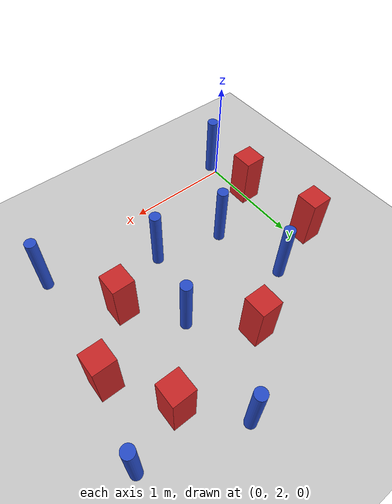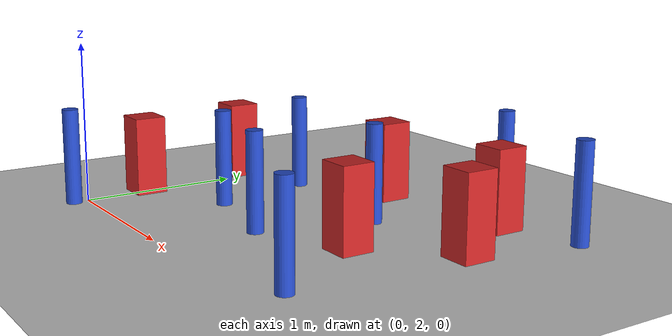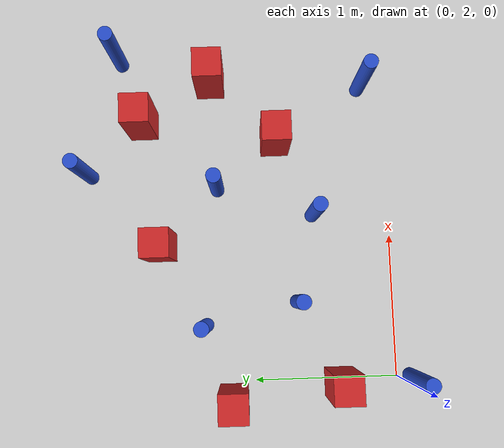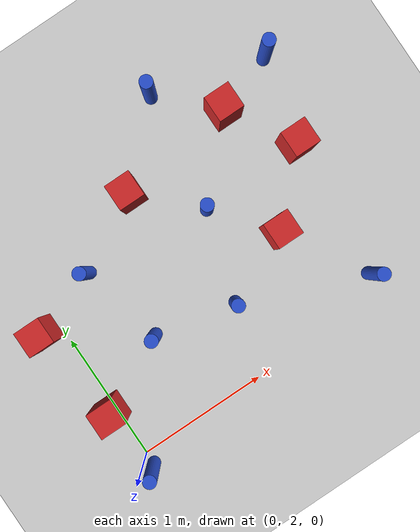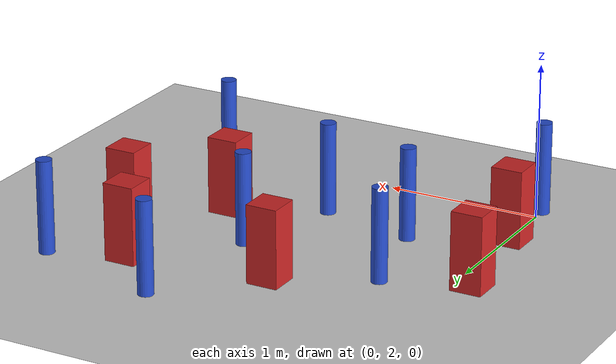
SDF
<sdf version="1.6">
 <world name="default">
  <model name="ground_plane">
   <static>1</static>
   <link name="link">
    <collision name="collision">
     <geometry><plane><normal>0 0 1</normal><size>100 100</size></plane></geometry>
     <surface><friction><ode><mu>100</mu><mu2>50</mu2></ode></friction></surface>
    </collision>
    <visual name="visual">
     <cast_shadows>0</cast_shadows>
     <geometry><plane><normal>0 0 1</normal><size>100 100</size></plane></geometry>
     <material>
      <ambient>1.0 1.0 1.0 1.0</ambient>
      <diffuse>0.8 0.8 0.8 1.0</diffuse>
      <specular>0.01 0.01 0.01 1.000000</specular>
     </material>
    </visual>
   </link>
  </model>
  <model name="pole_obstacle3">
   <static>true</static>
   <pose>0.546766999606 2.6899849425 7.38925637345e-09 -8.471706928e-08 1.2497676512e-08 -1.74513093015e-07</pose>
   <link name="link">
    <pose>0 0 0.3 0 -0 0</pose>
    <inertial>
     <mass>1</mass>
     <inertia><ixx>0.145833</ixx><ixy>0</ixy><ixz>0</ixz><iyy>0.145833</iyy><iyz>0</iyz><izz>0.125</izz></inertia>
    </inertial>
    <collision name="collision">
     <geometry><cylinder><radius>0.05</radius><length>.6</length></cylinder></geometry>
    </collision>
    <visual name="visual">
     <geometry><cylinder><radius>0.05</radius><length>.6</length></cylinder></geometry>
     <material>
      <script><name>Gazebo/Blue</name><uri>file://media/materials/scripts/gazebo.material</uri></script>
     </material>
    </visual>
   </link>
  </model>
  <model name="square_post_obstacle47">
   <static>true</static>
   <pose>-0.119099648137 3.15597819469 1.91545236811e-07 -7.35059704564e-06 1.12565212e-07 2.39332434364e-05</pose>
   <link name="link">
    <pose>0 0 0.25 0 -0 0</pose>
    <inertial>
     <mass>100</mass>
     <inertia>
      <ixx>0.166667</ixx>
      <ixy>0</ixy>
      <ixz>0</ixz>
      <iyy>0.166667</iyy>
      <iyz>0</iyz>
      <izz>0.166667</izz>
     </inertia>
    </inertial>
    <collision name="collision"><geometry><box><size>.2 .2 .5</size></box></geometry></collision>
    <visual name="visual">
     <geometry><box><size>.2 .2 .5</size></box></geometry>
     <material>
      <script><name>Gazebo/Red</name><uri>file://media/materials/scripts/gazebo.material</uri></script>
     </material>
    </visual>
   </link>
  </model>
  <model name="pole_obstacle58">
   <static>true</static>
   <pose>0.397705272501 3.34039945876 7.38925637345e-09 -8.471706928e-08 1.24976765084e-08 -1.74513093017e-07</pose>
   <link name="link">
    <pose>0 0 0.3 0 -0 0</pose>
    <inertial>
     <mass>1</mass>
     <inertia><ixx>0.145833</ixx><ixy>0</ixy><ixz>0</ixz><iyy>0.145833</iyy><iyz>0</iyz><izz>0.125</izz></inertia>
    </inertial>
    <collision name="collision">
     <geometry><cylinder><radius>0.05</radius><length>.6</length></cylinder></geometry>
    </collision>
    <visual name="visual">
     <geometry><cylinder><radius>0.05</radius><length>.6</length></cylinder></geometry>
     <material>
      <script><name>Gazebo/Blue</name><uri>file://media/materials/scripts/gazebo.material</uri></script>
     </material>
    </visual>
   </link>
  </model>
  <model name="pole_obstacle64">
   <static>true</static>
   <pose>1.37551216052 3.24116758559 7.38925637345e-09 -8.47170692799e-08 1.24976765053e-08 -1.74513093017e-07</pose>
   <link name="link">
    <pose>0 0 0.3 0 -0 0</pose>
    <inertial>
     <mass>1</mass>
     <inertia><ixx>0.145833</ixx><ixy>0</ixy><ixz>0</ixz><iyy>0.145833</iyy><iyz>0</iyz><izz>0.125</izz></inertia>
    </inertial>
    <collision name="collision">
     <geometry><cylinder><radius>0.05</radius><length>.6</length></cylinder></geometry>
    </collision>
    <visual name="visual">
     <geometry><cylinder><radius>0.05</radius><length>.6</length></cylinder></geometry>
     <material>
      <script><name>Gazebo/Blue</name><uri>file://media/materials/scripts/gazebo.material</uri></script>
     </material>
    </visual>
   </link>
  </model>
  <model name="pole_obstacle68">
   <static>true</static>
   <pose>2.34547046771 3.93124050635 7.38925637345e-09 -8.47170692798e-08 1.24976764939e-08 -1.74513093025e-07</pose>
   <link name="link">
    <pose>0 0 0.3 0 -0 0</pose>
    <inertial>
     <mass>1</mass>
     <inertia><ixx>0.145833</ixx><ixy>0</ixy><ixz>0</ixz><iyy>0.145833</iyy><iyz>0</iyz><izz>0.125</izz></inertia>
    </inertial>
    <collision name="collision">
     <geometry><cylinder><radius>0.05</radius><length>.6</length></cylinder></geometry>
    </collision>
    <visual name="visual">
     <geometry><cylinder><radius>0.05</radius><length>.6</length></cylinder></geometry>
     <material>
      <script><name>Gazebo/Blue</name><uri>file://media/materials/scripts/gazebo.material</uri></script>
     </material>
    </visual>
   </link>
  </model>
  <model name="square_post_obstacle103">
   <static>true</static>
   <pose>0.962811556818 3.64686974535 1.91545236811e-07 -7.35059704564e-06 1.12565212e-07 2.39332434364e-05</pose>
   <link name="link">
    <pose>0 0 0.25 0 -0 0</pose>
    <inertial>
     <mass>100</mass>
     <inertia>
      <ixx>0.166667</ixx>
      <ixy>0</ixy>
      <ixz>0</ixz>
      <iyy>0.166667</iyy>
      <iyz>0</iyz>
      <izz>0.166667</izz>
     </inertia>
    </inertial>
    <collision name="collision"><geometry><box><size>.2 .2 .5</size></box></geometry></collision>
    <visual name="visual">
     <geometry><box><size>.2 .2 .5</size></box></geometry>
     <material>
      <script><name>Gazebo/Red</name><uri>file://media/materials/scripts/gazebo.material</uri></script>
     </material>
    </visual>
   </link>
  </model>
  <model name="pole_obstacle147">
   <static>true</static>
   <pose>0.00451915030473 1.90810750088 7.38925637345e-09 -8.47170692799e-08 1.24976764949e-08 -1.74513093023e-07</pose>
   <link name="link">
    <pose>0 0 0.3 0 -0 0</pose>
    <inertial>
     <mass>1</mass>
     <inertia><ixx>0.145833</ixx><ixy>0</ixy><ixz>0</ixz><iyy>0.145833</iyy><iyz>0</iyz><izz>0.125</izz></inertia>
    </inertial>
    <collision name="collision">
     <geometry><cylinder><radius>0.05</radius><length>.6</length></cylinder></geometry>
    </collision>
    <visual name="visual">
     <geometry><cylinder><radius>0.05</radius><length>.6</length></cylinder></geometry>
     <material>
      <script><name>Gazebo/Blue</name><uri>file://media/materials/scripts/gazebo.material</uri></script>
     </material>
    </visual>
   </link>
  </model>
  <model name="square_post_obstacle153">
   <static>true</static>
   <pose>2.17187419314 3.27377666658 1.91545236811e-07 -7.35059704564e-06 1.12565212e-07 2.39332434364e-05</pose>
   <link name="link">
    <pose>0 0 0.25 0 -0 0</pose>
    <inertial>
     <mass>100</mass>
     <inertia>
      <ixx>0.166667</ixx>
      <ixy>0</ixy>
      <ixz>0</ixz>
      <iyy>0.166667</iyy>
      <iyz>0</iyz>
      <izz>0.166667</izz>
     </inertia>
    </inertial>
    <collision name="collision"><geometry><box><size>.2 .2 .5</size></box></geometry></collision>
    <visual name="visual">
     <geometry><box><size>.2 .2 .5</size></box></geometry>
     <material>
      <script><name>Gazebo/Red</name><uri>file://media/materials/scripts/gazebo.material</uri></script>
     </material>
    </visual>
   </link>
  </model>
  <model name="square_post_obstacle161">
   <static>true</static>
   <pose>-0.0234518218023 2.41390805467 1.91545236811e-07 -7.35059704564e-06 1.12565212e-07 2.39332434364e-05</pose>
   <link name="link">
    <pose>0 0 0.25 0 -0 0</pose>
    <inertial>
     <mass>100</mass>
     <inertia>
      <ixx>0.166667</ixx>
      <ixy>0</ixy>
      <ixz>0</ixz>
      <iyy>0.166667</iyy>
      <iyz>0</iyz>
      <izz>0.166667</izz>
     </inertia>
    </inertial>
    <collision name="collision"><geometry><box><size>.2 .2 .5</size></box></geometry></collision>
    <visual name="visual">
     <geometry><box><size>.2 .2 .5</size></box></geometry>
     <material>
      <script><name>Gazebo/Red</name><uri>file://media/materials/scripts/gazebo.material</uri></script>
     </material>
    </visual>
   </link>
  </model>
  <model name="square_post_obstacle163">
   <static>true</static>
   <pose>1.72017613019 2.81650073957 1.91545236811e-07 -7.35059704564e-06 1.12565212e-07 2.39332434364e-05</pose>
   <link name="link">
    <pose>0 0 0.25 0 -0 0</pose>
    <inertial>
     <mass>100</mass>
     <inertia>
      <ixx>0.166667</ixx>
      <ixy>0</ixy>
      <ixz>0</ixz>
      <iyy>0.166667</iyy>
      <iyz>0</iyz>
      <izz>0.166667</izz>
     </inertia>
    </inertial>
    <collision name="collision"><geometry><box><size>.2 .2 .5</size></box></geometry></collision>
    <visual name="visual">
     <geometry><box><size>.2 .2 .5</size></box></geometry>
     <material>
      <script><name>Gazebo/Red</name><uri>file://media/materials/scripts/gazebo.material</uri></script>
     </material>
    </visual>
   </link>
  </model>
  <model name="pole_obstacle178">
   <static>true</static>
   <pose>1.16806310443 2.55786432028 7.38925637345e-09 -8.47170692799e-08 1.24976765053e-08 -1.74513093017e-07</pose>
   <link name="link">
    <pose>0 0 0.3 0 -0 0</pose>
    <inertial>
     <mass>1</mass>
     <inertia><ixx>0.145833</ixx><ixy>0</ixy><ixz>0</ixz><iyy>0.145833</iyy><iyz>0</iyz><izz>0.125</izz></inertia>
    </inertial>
    <collision name="collision">
     <geometry><cylinder><radius>0.05</radius><length>.6</length></cylinder></geometry>
    </collision>
    <visual name="visual">
     <geometry><cylinder><radius>0.05</radius><length>.6</length></cylinder></geometry>
     <material>
      <script><name>Gazebo/Blue</name><uri>file://media/materials/scripts/gazebo.material</uri></script>
     </material>
    </visual>
   </link>
  </model>
  <model name="pole_obstacle181">
   <static>true</static>
   <pose>1.49840865579 4.16058623089 7.38925637345e-09 -8.47170692799e-08 1.24976765033e-08 -1.74513093018e-07</pose>
   <link name="link">
    <pose>0 0 0.3 0 -0 0</pose>
    <inertial>
     <mass>1</mass>
     <inertia><ixx>0.145833</ixx><ixy>0</ixy><ixz>0</ixz><iyy>0.145833</iyy><iyz>0</iyz><izz>0.125</izz></inertia>
    </inertial>
    <collision name="collision">
     <geometry><cylinder><radius>0.05</radius><length>.6</length></cylinder></geometry>
    </collision>
    <visual name="visual">
     <geometry><cylinder><radius>0.05</radius><length>.6</length></cylinder></geometry>
     <material>
      <script><name>Gazebo/Blue</name><uri>file://media/materials/scripts/gazebo.material</uri></script>
     </material>
    </visual>
   </link>
  </model>
  <model name="square_post_obstacle176">
   <static>true</static>
   <pose>1.87148981001 3.76761066779 1.91545236811e-07 -7.35059704564e-06 1.12565212e-07 2.39332434364e-05</pose>
   <link name="link">
    <pose>0 0 0.25 0 -0 0</pose>
    <inertial>
     <mass>100</mass>
     <inertia>
      <ixx>0.166667</ixx>
      <ixy>0</ixy>
      <ixz>0</ixz>
      <iyy>0.166667</iyy>
      <iyz>0</iyz>
      <izz>0.166667</izz>
     </inertia>
    </inertial>
    <collision name="collision"><geometry><box><size>.2 .2 .5</size></box></geometry></collision>
    <visual name="visual">
     <geometry><box><size>.2 .2 .5</size></box></geometry>
     <material>
      <script><name>Gazebo/Red</name><uri>file://media/materials/scripts/gazebo.material</uri></script>
     </material>
    </visual>
   </link>
  </model>
  <model name="pole_obstacle229">
   <static>true</static>
   <pose>2.10185000957 2.18513002078 7.38925637345e-09 -8.471706928e-08 1.24976765098e-08 -1.74513093016e-07</pose>
   <link name="link">
    <pose>0 0 0.3 0 -0 0</pose>
    <inertial>
     <mass>1</mass>
     <inertia><ixx>0.145833</ixx><ixy>0</ixy><ixz>0</ixz><iyy>0.145833</iyy><iyz>0</iyz><izz>0.125</izz></inertia>
    </inertial>
    <collision name="collision">
     <geometry><cylinder><radius>0.05</radius><length>.6</length></cylinder></geometry>
    </collision>
    <visual name="visual">
     <geometry><cylinder><radius>0.05</radius><length>.6</length></cylinder></geometry>
     <material>
      <script><name>Gazebo/Blue</name><uri>file://media/materials/scripts/gazebo.material</uri></script>
     </material>
    </visual>
   </link>
  </model>
 </world>
</sdf>
